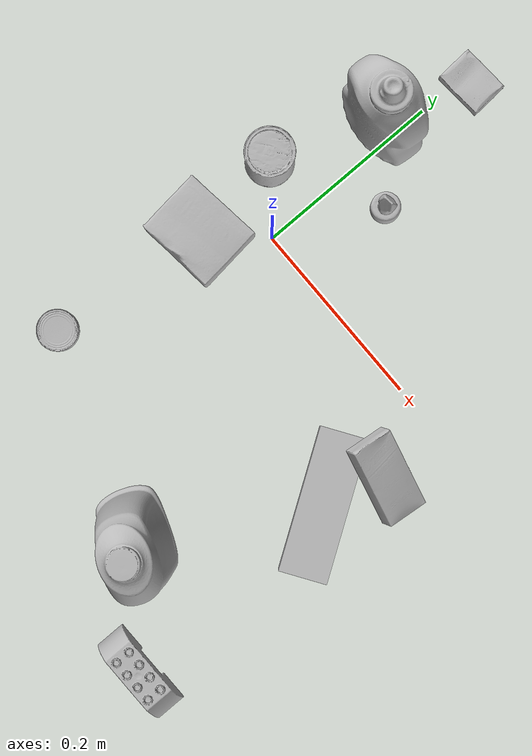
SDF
<sdf version="1.4">
  <world name="default">
    <light name="light1" type="point">
      <pose>0 0 1 0 0 0</pose>
      <diffuse>3 3 3 1</diffuse>
      <specular>3 3 3 1</specular>
    </light>
    <light name="light2" type="point">
      <pose>0 0.5 2 0 0 0</pose>
      <diffuse>1 1 1 1</diffuse>
      <specular>1 1 1 1</specular>
    </light>
    <light name="light3" type="point">
      <pose>0 0.5 2 0 0 0</pose>
      <diffuse>3 3 3 1</diffuse>
      <specular>3 3 3 1</specular>
    </light>
    <scene>
      <ambient>0.7 0.7 0.7</ambient>
    </scene>
    <model name="bottle1">
      <link name="link_bottle1">
        <collision name="default">
          <geometry>
            <mesh>
              <uri>model://mustard_bottle/collision_meshes/collision.obj</uri>
              <scale>1.0 1.0 1.0</scale>
            </mesh>
          </geometry>
          <surface>
            <friction>
              <ode>
                <mu>0.5</mu>
                <mu2>0.5</mu2>
              </ode>
            </friction>
          <contact>
        <ode>
            <max_vel>0</max_vel>
            <min_depth>0.0001</min_depth>
            <kp>1e8</kp>
        </ode>
    </contact></surface>
        </collision>
        <visual name="default">
          <geometry>
            <mesh>
              <uri>model://mustard_bottle/visual_meshes/visual.dae</uri>
              <scale>1.0 1.0 1.0</scale>
            </mesh>
          </geometry>
        </visual>
        <inertial>
          <mass>0.8303800225257874</mass>
          <pose>0.0005032453336752951 -0.00015647402324248105 -0.017475798726081848 0.0004182333015560062 0.0009465791044325989 0.02485372608929167</pose>
          <inertia>
            <ixx>0.0023058522</ixx>
            <iyy>0.0020231898</iyy>
            <izz>0.00060770847</izz>
            <ixy>0</ixy>
            <ixz>0</ixz>
            <iyz>0</iyz>
          </inertia>
        </inertial>
      </link>
      <pose>-0.019004913046956062 0.16088324785232544 0.09617531299591064 -0.00022827302113128994 -0.0008505051284712086 -1.6581669030939898</pose>
    </model>
    <model name="bottle2">
      <link name="link_bottle2">
        <collision name="default">
          <geometry>
            <mesh>
              <uri>model://bleach_cleanser/collision_meshes/collision.obj</uri>
              <scale>1.0 1.0 1.0</scale>
            </mesh>
          </geometry>
          <surface>
            <friction>
              <ode>
                <mu>0.5</mu>
                <mu2>0.5</mu2>
              </ode>
            </friction>
          <contact>
        <ode>
            <max_vel>0</max_vel>
            <min_depth>0.0001</min_depth>
            <kp>1e8</kp>
        </ode>
    </contact></surface>
        </collision>
        <visual name="default">
          <geometry>
            <mesh>
              <uri>model://bleach_cleanser/visual_meshes/visual.dae</uri>
              <scale>1.0 1.0 1.0</scale>
            </mesh>
          </geometry>
        </visual>
        <inertial>
          <mass>1.2443958520889282</mass>
          <pose>0.00012193184375064448 0.0037838828284293413 -0.02442161552608013 -0.07381670616387152 0.00042011519151103325 -0.006875073427896589</pose>
          <inertia>
            <ixx>0.006056655</ixx>
            <iyy>0.005643917</iyy>
            <izz>0.0010355307</izz>
            <ixy>0</ixy>
            <ixz>0</ixz>
            <iyz>0</iyz>
          </inertia>
        </inertial>
      </link>
      <pose>0.14260444045066833 -0.29680413007736206 0.12585541605949402 -0.0002744196321520027 -0.0026688810914656195 -1.8999928702646158</pose>
    </model>
    <model name="toy1">
      <link name="link_toy1">
        <collision name="default">
          <geometry>
            <mesh>
              <uri>model://e_lego_duplo/collision_meshes/collision.obj</uri>
              <scale>1.0 1.0 1.0</scale>
            </mesh>
          </geometry>
          <surface>
            <friction>
              <ode>
                <mu>0.5</mu>
                <mu2>0.5</mu2>
              </ode>
            </friction>
          <contact>
        <ode>
            <max_vel>0</max_vel>
            <min_depth>0.0001</min_depth>
            <kp>1e8</kp>
        </ode>
    </contact></surface>
        </collision>
        <visual name="default">
          <geometry>
            <mesh>
              <uri>model://e_lego_duplo/visual_meshes/visual.dae</uri>
              <scale>1.0 1.0 1.0</scale>
            </mesh>
          </geometry>
        </visual>
        <inertial>
          <mass>0.09737597405910492</mass>
          <pose>0.00032560466206632555 0.00023485408746637404 0.00195214559789747 -0.022567666099209266 -6.826041083389806e-05 -0.0076251575404409295</pose>
          <inertia>
            <ixx>2.0306108e-05</ixx>
            <iyy>8.3341496e-05</iyy>
            <izz>8.115786e-05</izz>
            <ixy>0</ixy>
            <ixz>0</ixz>
            <iyz>0</iyz>
          </inertia>
        </inertial>
      </link>
      <pose>0.24615691602230072 -0.38258007168769836 0.02180894836783409 3.877916056208894e-07 -8.622844570900206e-08 -3.136400758349869</pose>
    </model>
    <model name="toy2">
      <link name="link_toy2">
        <collision name="default">
          <geometry>
            <mesh>
              <uri>model://e_toy_airplane/collision_meshes/collision.obj</uri>
              <scale>1.0 1.0 1.0</scale>
            </mesh>
          </geometry>
          <surface>
            <friction>
              <ode>
                <mu>0.5</mu>
                <mu2>0.5</mu2>
              </ode>
            </friction>
          <contact>
        <ode>
            <max_vel>0</max_vel>
            <min_depth>0.0001</min_depth>
            <kp>1e8</kp>
        </ode>
    </contact></surface>
        </collision>
        <visual name="default">
          <geometry>
            <mesh>
              <uri>model://e_toy_airplane/visual_meshes/visual.dae</uri>
              <scale>1.0 1.0 1.0</scale>
            </mesh>
          </geometry>
        </visual>
        <inertial>
          <mass>0.02463557943701744</mass>
          <pose>0.0001174048229586333 -2.2482929125544615e-05 -0.011187203228473663 0.005518471763615081 0.009228316378097946 0.15041226495803456</pose>
          <inertia>
            <ixx>7.519061e-06</ixx>
            <iyy>7.442144e-06</iyy>
            <izz>2.2597733e-06</izz>
            <ixy>0</ixy>
            <ixz>0</ixz>
            <iyz>0</iyz>
          </inertia>
        </inertial>
      </link>
      <pose>0.05075571686029434 0.1069471538066864 0.033212922513484955 -9.956492119885259e-05 -0.0007297895768059319 -1.5851801925320324</pose>
    </model>
    <model name="can1">
      <link name="link_can1">
        <collision name="default">
          <geometry>
            <mesh>
              <uri>model://master_chef_can/collision_meshes/collision.obj</uri>
              <scale>0.5 0.5 0.5</scale>
            </mesh>
          </geometry>
          <surface>
            <friction>
              <ode>
                <mu>0.5</mu>
                <mu2>0.5</mu2>
              </ode>
            </friction>
          <contact>
        <ode>
            <max_vel>0</max_vel>
            <min_depth>0.0001</min_depth>
            <kp>1e8</kp>
        </ode>
    </contact></surface>
        </collision>
        <visual name="default">
          <geometry>
            <mesh>
              <uri>model://master_chef_can/visual_meshes/visual.dae</uri>
              <scale>0.5 0.5 0.5</scale>
            </mesh>
          </geometry>
        </visual>
        <inertial>
          <mass>0.10604178160429001</mass>
          <pose>-4.6619643399026245e-05 1.3926852204804163e-07 -5.079910988570191e-05 -0.0017995162277820833 0.0006479167566960504 -0.6102671332965355</pose>
          <inertia>
            <ixx>6.2239335e-05</ixx>
            <iyy>6.178125e-05</iyy>
            <izz>3.439199e-05</izz>
            <ixy>0</ixy>
            <ixz>0</ixz>
            <iyz>0</iyz>
          </inertia>
        </inertial>
      </link>
      <pose>-0.06086668372154236 0.04867537319660187 0.03530199080705643 -1.346595790826349e-06 -1.096844450076116e-06 1.1271241417000537</pose>
    </model>
    <model name="can2">
      <link name="link_can2">
        <collision name="default">
          <geometry>
            <mesh>
              <uri>model://tuna_fish_can/collision_meshes/collision.obj</uri>
              <scale>0.5 0.5 0.5</scale>
            </mesh>
          </geometry>
          <surface>
            <friction>
              <ode>
                <mu>0.5</mu>
                <mu2>0.5</mu2>
              </ode>
            </friction>
          <contact>
        <ode>
            <max_vel>0</max_vel>
            <min_depth>0.0001</min_depth>
            <kp>1e8</kp>
        </ode>
    </contact></surface>
        </collision>
        <visual name="default">
          <geometry>
            <mesh>
              <uri>model://tuna_fish_can/visual_meshes/visual.dae</uri>
              <scale>0.5 0.5 0.5</scale>
            </mesh>
          </geometry>
        </visual>
        <inertial>
          <mass>0.028372401371598244</mass>
          <pose>-2.0361669157864526e-05 -7.256527169374749e-06 -0.0005269024986773729 -0.0017944775646394609 0.00017161727950706725 0.2405381123423382</pose>
          <inertia>
            <ixx>3.8359926e-06</ixx>
            <iyy>3.8200033e-06</iyy>
            <izz>6.5639315e-06</izz>
            <ixy>0</ixy>
            <ixz>0</ixz>
            <iyz>0</iyz>
          </inertia>
        </inertial>
      </link>
      <pose>-0.06839799880981445 -0.2244694083929062 0.00851999968290329 -1.1366228365591234e-08 1.5817913704151374e-09 -0.6262123540044936</pose>
    </model>
    <model name="box1">
      <link name="link_box1">
        <collision name="default">
          <geometry>
            <mesh>
              <uri>model://jenga/collision_meshes/collision.obj</uri>
              <scale>1.0 1.0 1.0</scale>
            </mesh>
          </geometry>
          <surface>
            <friction>
              <ode>
                <mu>0.5</mu>
                <mu2>0.5</mu2>
              </ode>
            </friction>
          <contact>
        <ode>
            <max_vel>0</max_vel>
            <min_depth>0.0001</min_depth>
            <kp>1e8</kp>
        </ode>
    </contact></surface>
        </collision>
        <visual name="default">
          <geometry>
            <mesh>
              <uri>model://jenga/visual_meshes/visual.dae</uri>
              <scale>1.0 1.0 1.0</scale>
            </mesh>
          </geometry>
        </visual>
        <inertial>
          <mass>0.19909408688545227</mass>
          <pose>-2.502855807051674e-07 -0.0001025000965455547 -4.0923401684267446e-05 0.0 -7.34215461761844e-07 0.0</pose>
          <inertia>
            <ixx>5.509416e-05</ixx>
            <iyy>0.00037331658</iyy>
            <izz>0.00039854718</izz>
            <ixy>0</ixy>
            <ixz>0</ixz>
            <iyz>0</iyz>
          </inertia>
        </inertial>
      </link>
      <pose>0.23720994591712952 -0.1346791833639145 0.01499999314546585 -2.908955781899699e-06 -8.770223051628124e-07 -0.9883706467787059</pose>
    </model>
    <model name="box2">
      <link name="link_box2">
        <collision name="default">
          <geometry>
            <mesh>
              <uri>model://cracker_box/collision_meshes/collision.obj</uri>
              <scale>0.25 0.25 0.25</scale>
            </mesh>
          </geometry>
          <surface>
            <friction>
              <ode>
                <mu>0.5</mu>
                <mu2>0.5</mu2>
              </ode>
            </friction>
          <contact>
        <ode>
            <max_vel>0</max_vel>
            <min_depth>0.0001</min_depth>
            <kp>1e8</kp>
        </ode>
    </contact></surface>
        </collision>
        <visual name="default">
          <geometry>
            <mesh>
              <uri>model://cracker_box/visual_meshes/visual.dae</uri>
              <scale>0.25 0.25 0.25</scale>
            </mesh>
          </geometry>
        </visual>
        <inertial>
          <mass>0.04114612191915512</mass>
          <pose>0.00023660354781895876 6.358561950037256e-05 -0.0004257383698131889 -0.00031620780631524763 -0.011106488668660274 0.002546795934166242</pose>
          <inertia>
            <ixx>6.5410845e-06</ixx>
            <iyy>1.0800616e-05</iyy>
            <izz>1.5413472e-05</izz>
            <ixy>0</ixy>
            <ixz>0</ixz>
            <iyz>0</iyz>
          </inertia>
        </inertial>
      </link>
      <pose>0.010525696910917759 0.255140483379364 0.009120449423789978 -0.011787977576368411 -0.007367202281289608 0.06385391669399802</pose>
    </model>
    <model name="box3">
      <link name="link_box3">
        <collision name="default">
          <geometry>
            <mesh>
              <uri>model://gelatin_box/collision_meshes/collision.obj</uri>
              <scale>1.0 1.0 1.0</scale>
            </mesh>
          </geometry>
          <surface>
            <friction>
              <ode>
                <mu>0.5</mu>
                <mu2>0.5</mu2>
              </ode>
            </friction>
          <contact>
        <ode>
            <max_vel>0</max_vel>
            <min_depth>0.0001</min_depth>
            <kp>1e8</kp>
        </ode>
    </contact></surface>
        </collision>
        <visual name="default">
          <geometry>
            <mesh>
              <uri>model://gelatin_box/visual_meshes/visual.dae</uri>
              <scale>1.0 1.0 1.0</scale>
            </mesh>
          </geometry>
        </visual>
        <inertial>
          <mass>0.2244011014699936</mass>
          <pose>0.00043196187471039593 0.00011156871914863586 -0.00036403213744051754 -0.001050372105108351 -0.004755819619724262 0.01644056133527167</pose>
          <inertia>
            <ixx>0.00015840889</ixx>
            <iyy>0.000113150636</iyy>
            <izz>0.0002411336</izz>
            <ixy>0</ixy>
            <ixz>0</ixz>
            <iyz>0</iyz>
          </inertia>
        </inertial>
      </link>
      <pose>-0.05215572565793991 -0.05155360326170921 0.015168314799666405 0.005597387948293453 -0.007304475050194657 -1.4675655760330562</pose>
    </model>
    <model name="box4">
      <link name="link_box4">
        <collision name="default">
          <geometry>
            <mesh>
              <uri>model://sugar_box/collision_meshes/collision.obj</uri>
              <scale>0.5 0.5 0.5</scale>
            </mesh>
          </geometry>
          <surface>
            <friction>
              <ode>
                <mu>0.5</mu>
                <mu2>0.5</mu2>
              </ode>
            </friction>
          <contact>
        <ode>
            <max_vel>0</max_vel>
            <min_depth>0.0001</min_depth>
            <kp>1e8</kp>
        </ode>
    </contact></surface>
        </collision>
        <visual name="default">
          <geometry>
            <mesh>
              <uri>model://sugar_box/visual_meshes/visual.dae</uri>
              <scale>0.5 0.5 0.5</scale>
            </mesh>
          </geometry>
        </visual>
        <inertial>
          <mass>0.11117161065340042</mass>
          <pose>0.0005171863595023751 1.9245546354795806e-05 -0.00018182402709499002 -0.0004046265622990317 0.001050663638873437 0.002615378555930204</pose>
          <inertia>
            <ixx>2.3156968e-05</ixx>
            <iyy>7.4848074e-05</iyy>
            <izz>8.960209e-05</izz>
            <ixy>0</ixy>
            <ixz>0</ixz>
            <iyz>0</iyz>
          </inertia>
        </inertial>
      </link>
      <pose>0.2559601068496704 -0.06894514709711075 0.028618795797228813 -0.3083421952363711 0.3239164275043838 -0.22911252025325812</pose>
    </model>
  <physics type="ode">
      <max_contacts>50</max_contacts>
      <ode>
        <solver>
          <type>quick</type>
          <iters>75</iters>
        </solver>
        <constraints>
          <contact_max_correcting_vel>0</contact_max_correcting_vel>
          <contact_surface_layer>0</contact_surface_layer>
        </constraints>
      </ode>
    </physics></world>
</sdf>
